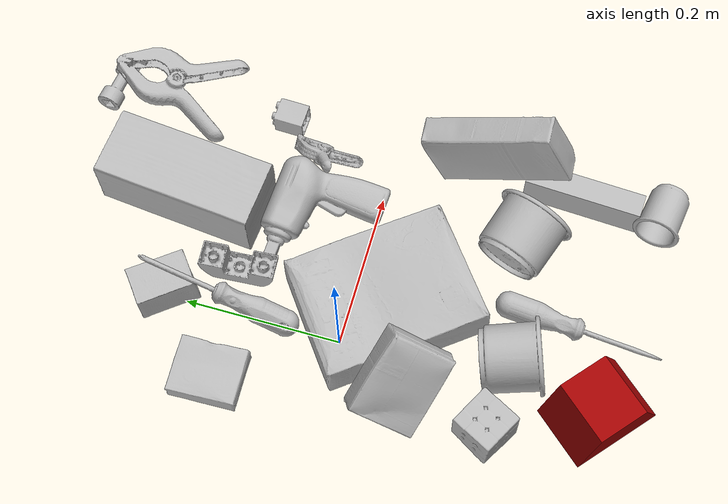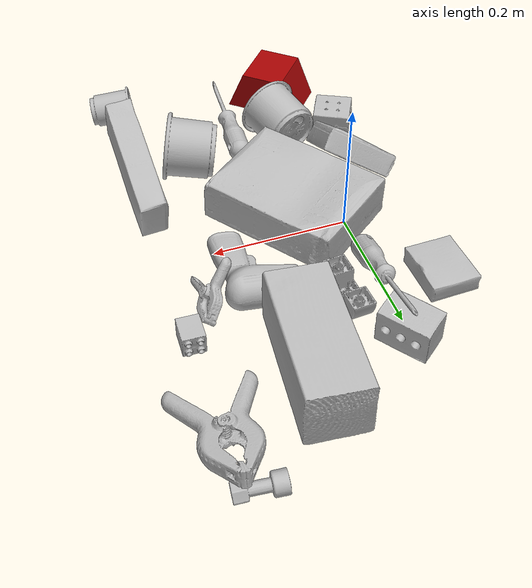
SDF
<sdf version="1.4">
  <world name="default">
    <light name="light1" type="point">
      <pose>0 0 1 0 0 0</pose>
      <diffuse>3 3 3 1</diffuse>
      <specular>3 3 3 1</specular>
    </light>
    <light name="light2" type="point">
      <pose>0 0.5 2 0 0 0</pose>
      <diffuse>1 1 1 1</diffuse>
      <specular>1 1 1 1</specular>
    </light>
    <light name="light3" type="point">
      <pose>0 0.5 2 0 0 0</pose>
      <diffuse>3 3 3 1</diffuse>
      <specular>3 3 3 1</specular>
    </light>
    <scene>
      <ambient>0.7 0.7 0.7</ambient>
    </scene>
    <model name="box21">
      <link name="link_box21">
        <collision name="default">
          <geometry>
            <mesh>
              <uri>model://cracker_box/collision_meshes/collision.obj</uri>
              <scale>1.0 1.0 1.0</scale>
            </mesh>
          </geometry>
          <surface>
            <friction>
              <ode>
                <mu>0.5</mu>
                <mu2>0.5</mu2>
              </ode>
            </friction>
          <contact>
        <ode>
            <max_vel>0</max_vel>
            <min_depth>0.0001</min_depth>
            <kp>1e8</kp>
        </ode>
    </contact></surface>
        </collision>
        <visual name="default">
          <geometry>
            <mesh>
              <uri>model://cracker_box/visual_meshes/visual.dae</uri>
              <scale>1.0 1.0 1.0</scale>
            </mesh>
          </geometry>
        </visual>
        <inertial>
          <mass>3.1344146728515625</mass>
          <pose>0.0009464123286306858 0.00025434247800149024 -0.0017029535956680775 -0.0003162077429326042 -0.011106488668875016 0.0025467950024750923</pose>
          <inertia>
            <ixx>0.0079725515</ixx>
            <iyy>0.01316425</iyy>
            <izz>0.01878659</izz>
            <ixy>0</ixy>
            <ixz>0</ixz>
            <iyz>0</iyz>
          </inertia>
        </inertial>
      </link>
      <pose>0.06319320201873779 -0.042332835495471954 0.03648179769515991 -0.011788218720367474 -0.00736710999934308 -0.9288252763415257</pose>
    </model>
    <model name="box22">
      <link name="link_box22">
        <collision name="default">
          <geometry>
            <mesh>
              <uri>model://jenga/collision_meshes/collision.obj</uri>
              <scale>1.0 1.0 1.0</scale>
            </mesh>
          </geometry>
          <surface>
            <friction>
              <ode>
                <mu>0.5</mu>
                <mu2>0.5</mu2>
              </ode>
            </friction>
          <contact>
        <ode>
            <max_vel>0</max_vel>
            <min_depth>0.0001</min_depth>
            <kp>1e8</kp>
        </ode>
    </contact></surface>
        </collision>
        <visual name="default">
          <geometry>
            <mesh>
              <uri>model://jenga/visual_meshes/visual.dae</uri>
              <scale>1.0 1.0 1.0</scale>
            </mesh>
          </geometry>
        </visual>
        <inertial>
          <mass>0.23869852721691132</mass>
          <pose>-2.502855807051674e-07 -0.0001025000965455547 -4.092339804628864e-05 0.0 -7.34215461761844e-07 0.0</pose>
          <inertia>
            <ixx>6.605367e-05</ixx>
            <iyy>0.00044757788</iyy>
            <izz>0.00047782745</izz>
            <ixy>0</ixy>
            <ixz>0</ixz>
            <iyz>0</iyz>
          </inertia>
        </inertial>
      </link>
      <pose>0.264342337846756 -0.2472194880247116 0.02470097690820694 1.5775759859903118 -3.776436463427624e-05 1.5168237715644182</pose>
    </model>
    <model name="box23">
      <link name="link_box23">
        <collision name="default">
          <geometry>
            <mesh>
              <uri>model://rubiks_cube/collision_meshes/collision.obj</uri>
              <scale>1.0 1.0 1.0</scale>
            </mesh>
          </geometry>
          <surface>
            <friction>
              <ode>
                <mu>0.5</mu>
                <mu2>0.5</mu2>
              </ode>
            </friction>
          <contact>
        <ode>
            <max_vel>0</max_vel>
            <min_depth>0.0001</min_depth>
            <kp>1e8</kp>
        </ode>
    </contact></surface>
        </collision>
        <visual name="default">
          <geometry>
            <mesh>
              <uri>model://rubiks_cube/visual_meshes/visual.dae</uri>
              <scale>1.0 1.0 1.0</scale>
            </mesh>
          </geometry>
        </visual>
        <inertial>
          <mass>0.26229962706565857</mass>
          <pose>2.6721041649580002e-05 5.2569666877388954e-05 -7.264316082000732e-06 -0.05467189873579491 -0.09814109048128683 -0.0344550730209751</pose>
          <inertia>
            <ixx>0.00014493814</ixx>
            <iyy>0.00014426222</iyy>
            <izz>0.00014613918</izz>
            <ixy>0</ixy>
            <ixz>0</ixz>
            <iyz>0</iyz>
          </inertia>
        </inertial>
      </link>
      <pose>-0.06114689260721207 -0.20041228830814362 0.029059726744890213 -3.1341411656104943 0.010891894897546954 1.0426471963329718</pose>
    </model>
    <model name="cup1">
      <link name="link_cup1">
        <collision name="default">
          <geometry>
            <mesh>
              <uri>model://j_cups/collision_meshes/collision.obj</uri>
              <scale>1.0 1.0 1.0</scale>
            </mesh>
          </geometry>
          <surface>
            <friction>
              <ode>
                <mu>0.5</mu>
                <mu2>0.5</mu2>
              </ode>
            </friction>
          <contact>
        <ode>
            <max_vel>0</max_vel>
            <min_depth>0.0001</min_depth>
            <kp>1e8</kp>
        </ode>
    </contact></surface>
        </collision>
        <visual name="default">
          <geometry>
            <mesh>
              <uri>model://j_cups/visual_meshes/visual.dae</uri>
              <scale>1.0 1.0 1.0</scale>
            </mesh>
          </geometry>
        </visual>
        <inertial>
          <mass>0.10388943552970886</mass>
          <pose>0.0006164857186377048 0.0005398984649218619 -0.0013479008339345455 0.03030360356214998 0.03758024855654077 0.43868424196936845</pose>
          <inertia>
            <ixx>0.00015254253</ixx>
            <iyy>0.0001541288</iyy>
            <izz>0.00017584988</izz>
            <ixy>0</ixy>
            <ixz>0</ixz>
            <iyz>0</iyz>
          </inertia>
        </inertial>
      </link>
      <pose>0.18000918626785278 -0.18472668528556824 0.04694898799061775 -1.0431731385618732 1.322097684930251 -1.3960555952602736</pose>
    </model>
    <model name="cup2">
      <link name="link_cup2">
        <collision name="default">
          <geometry>
            <mesh>
              <uri>model://i_cups/collision_meshes/collision.obj</uri>
              <scale>1.0 1.0 1.0</scale>
            </mesh>
          </geometry>
          <surface>
            <friction>
              <ode>
                <mu>0.5</mu>
                <mu2>0.5</mu2>
              </ode>
            </friction>
          <contact>
        <ode>
            <max_vel>0</max_vel>
            <min_depth>0.0001</min_depth>
            <kp>1e8</kp>
        </ode>
    </contact></surface>
        </collision>
        <visual name="default">
          <geometry>
            <mesh>
              <uri>model://i_cups/visual_meshes/visual.dae</uri>
              <scale>1.0 1.0 1.0</scale>
            </mesh>
          </geometry>
        </visual>
        <inertial>
          <mass>0.057485051453113556</mass>
          <pose>0.00011239853483857587 0.00016797262651380152 -0.000857901235576719 -0.028982969026390082 -0.03987335468246028 -0.34591562504163004</pose>
          <inertia>
            <ixx>7.958892e-05</ixx>
            <iyy>8.029015e-05</iyy>
            <izz>8.8953486e-05</izz>
            <ixy>0</ixy>
            <ixz>0</ixz>
            <iyz>0</iyz>
          </inertia>
        </inertial>
      </link>
      <pose>0.02423764020204544 -0.21042922139167786 0.04489922523498535 1.237171521545906 1.1914225678807546 -0.012844559033568586</pose>
    </model>
    <model name="box11">
      <link name="link_box11">
        <collision name="default">
          <geometry>
            <mesh>
              <uri>model://wood_block/collision_meshes/collision.obj</uri>
              <scale>1.0 1.0 1.0</scale>
            </mesh>
          </geometry>
          <surface>
            <friction>
              <ode>
                <mu>0.5</mu>
                <mu2>0.5</mu2>
              </ode>
            </friction>
          <contact>
        <ode>
            <max_vel>0</max_vel>
            <min_depth>0.0001</min_depth>
            <kp>1e8</kp>
        </ode>
    </contact></surface>
        </collision>
        <visual name="default">
          <geometry>
            <mesh>
              <uri>model://wood_block/visual_meshes/visual.dae</uri>
              <scale>1.0 1.0 1.0</scale>
            </mesh>
          </geometry>
        </visual>
        <inertial>
          <mass>2.2218124866485596</mass>
          <pose>-5.813315510749817e-06 -0.000570809468626976 0.0002640858292579651 -0.052211005792275555 -0.005192694700552194 -0.006861375481739596</pose>
          <inertia>
            <ixx>0.0029731211</ixx>
            <iyy>0.009392092</iyy>
            <izz>0.009356961</izz>
            <ixy>0</ixy>
            <ixz>0</ixz>
            <iyz>0</iyz>
          </inertia>
        </inertial>
      </link>
      <pose>0.14066430926322937 0.24186721444129944 0.045700665563344955 1.568130111839033 -0.006938640326150662 1.4757561537456554</pose>
    </model>
    <model name="box12">
      <link name="link_box12">
        <collision name="default">
          <geometry>
            <mesh>
              <uri>model://sugar_box/collision_meshes/collision.obj</uri>
              <scale>1.0 1.0 1.0</scale>
            </mesh>
          </geometry>
          <surface>
            <friction>
              <ode>
                <mu>0.5</mu>
                <mu2>0.5</mu2>
              </ode>
            </friction>
          <contact>
        <ode>
            <max_vel>0</max_vel>
            <min_depth>0.0001</min_depth>
            <kp>1e8</kp>
        </ode>
    </contact></surface>
        </collision>
        <visual name="default">
          <geometry>
            <mesh>
              <uri>model://sugar_box/visual_meshes/visual.dae</uri>
              <scale>1.0 1.0 1.0</scale>
            </mesh>
          </geometry>
        </visual>
        <inertial>
          <mass>1.0162616968154907</mass>
          <pose>0.0010343727190047503 3.849109634757042e-05 -0.00036364805418998003 -0.0004046261550277283 0.0010506634055573133 0.0026153787890220875</pose>
          <inertia>
            <ixx>0.00084674655</ixx>
            <iyy>0.002736858</iyy>
            <izz>0.0032763465</izz>
            <ixy>0</ixy>
            <ixz>0</ixz>
            <iyz>0</iyz>
          </inertia>
        </inertial>
      </link>
      <pose>0.27467280626296997 -0.12866748869419098 0.07896832376718521 1.6299067918788013 0.4365313323702644 1.6208451715511383</pose>
    </model>
    <model name="box13">
      <link name="link_box13">
        <collision name="default">
          <geometry>
            <mesh>
              <uri>model://pudding_box/collision_meshes/collision.obj</uri>
              <scale>1.0 1.0 1.0</scale>
            </mesh>
          </geometry>
          <surface>
            <friction>
              <ode>
                <mu>0.5</mu>
                <mu2>0.5</mu2>
              </ode>
            </friction>
          <contact>
        <ode>
            <max_vel>0</max_vel>
            <min_depth>0.0001</min_depth>
            <kp>1e8</kp>
        </ode>
    </contact></surface>
        </collision>
        <visual name="default">
          <geometry>
            <mesh>
              <uri>model://pudding_box/visual_meshes/visual.dae</uri>
              <scale>1.0 1.0 1.0</scale>
            </mesh>
          </geometry>
        </visual>
        <inertial>
          <mass>0.24922829866409302</mass>
          <pose>0.0004894822486676276 0.0008067885646596551 -0.0005188828217796981 0.005213100397381839 -0.006603797317439846 0.02007982889363753</pose>
          <inertia>
            <ixx>0.00028173975</ixx>
            <iyy>0.00018955652</iyy>
            <izz>0.0004160624</izz>
            <ixy>0</ixy>
            <ixz>0</ixz>
            <iyz>0</iyz>
          </inertia>
        </inertial>
      </link>
      <pose>-0.04478980973362923 -0.08966580033302307 0.05909731984138489 2.5459245489591034 -0.4974974871192715 1.5446489638377587</pose>
    </model>
    <model name="box14">
      <link name="link_box14">
        <collision name="default">
          <geometry>
            <mesh>
              <uri>model://gelatin_box/collision_meshes/collision.obj</uri>
              <scale>1.0 1.0 1.0</scale>
            </mesh>
          </geometry>
          <surface>
            <friction>
              <ode>
                <mu>0.5</mu>
                <mu2>0.5</mu2>
              </ode>
            </friction>
          <contact>
        <ode>
            <max_vel>0</max_vel>
            <min_depth>0.0001</min_depth>
            <kp>1e8</kp>
        </ode>
    </contact></surface>
        </collision>
        <visual name="default">
          <geometry>
            <mesh>
              <uri>model://gelatin_box/visual_meshes/visual.dae</uri>
              <scale>1.0 1.0 1.0</scale>
            </mesh>
          </geometry>
        </visual>
        <inertial>
          <mass>0.21856601536273956</mass>
          <pose>0.0004319618456065655 0.00011156871914863586 -0.00036403213744051754 -0.001050372093012012 -0.00475581868936722 0.016440559471878533</pose>
          <inertia>
            <ixx>0.00015428978</ixx>
            <iyy>0.000110208384</iyy>
            <izz>0.00023486343</izz>
            <ixy>0</ixy>
            <ixz>0</ixz>
            <iyz>0</iyz>
          </inertia>
        </inertial>
      </link>
      <pose>-0.08476661890745163 0.1420733481645584 0.015168312005698681 0.005597500435468938 -0.007304579789904046 0.018533715544867924</pose>
    </model>
    <model name="cup15">
      <link name="link_cup15">
        <collision name="default">
          <geometry>
            <mesh>
              <uri>model://b_cups/collision_meshes/collision.obj</uri>
              <scale>1.0 1.0 1.0</scale>
            </mesh>
          </geometry>
          <surface>
            <friction>
              <ode>
                <mu>0.5</mu>
                <mu2>0.5</mu2>
              </ode>
            </friction>
          <contact>
        <ode>
            <max_vel>0</max_vel>
            <min_depth>0.0001</min_depth>
            <kp>1e8</kp>
        </ode>
    </contact></surface>
        </collision>
        <visual name="default">
          <geometry>
            <mesh>
              <uri>model://b_cups/visual_meshes/visual.dae</uri>
              <scale>1.0 1.0 1.0</scale>
            </mesh>
          </geometry>
        </visual>
        <inertial>
          <mass>0.04691024869680405</mass>
          <pose>0.0005182002787478268 0.0018058588029816747 -0.0013381802709773183 0.1135631498080702 0.03872518969029637 -0.3456955043116969</pose>
          <inertia>
            <ixx>3.0706047e-05</ixx>
            <iyy>3.012308e-05</iyy>
            <izz>2.5838557e-05</izz>
            <ixy>0</ixy>
            <ixz>0</ixz>
            <iyz>0</iyz>
          </inertia>
        </inertial>
      </link>
      <pose>0.2673167288303375 -0.350726842880249 0.027937889099121094 -1.465999108985365 -0.48111140787601087 1.3549081408471875</pose>
    </model>
    <model name="toy1">
      <link name="link_toy1">
        <collision name="default">
          <geometry>
            <mesh>
              <uri>model://e_lego_duplo/collision_meshes/collision.obj</uri>
              <scale>1.0 1.0 1.0</scale>
            </mesh>
          </geometry>
          <surface>
            <friction>
              <ode>
                <mu>0.5</mu>
                <mu2>0.5</mu2>
              </ode>
            </friction>
          <contact>
        <ode>
            <max_vel>0</max_vel>
            <min_depth>0.0001</min_depth>
            <kp>1e8</kp>
        </ode>
    </contact></surface>
        </collision>
        <visual name="default">
          <geometry>
            <mesh>
              <uri>model://e_lego_duplo/visual_meshes/visual.dae</uri>
              <scale>1.0 1.0 1.0</scale>
            </mesh>
          </geometry>
        </visual>
        <inertial>
          <mass>0.06732096523046494</mass>
          <pose>0.000325604691170156 0.00023485434940084815 0.001952146296389401 -0.02256754688519212 -6.825533823954374e-05 -0.007625149208872714</pose>
          <inertia>
            <ixx>1.40386455e-05</ixx>
            <iyy>5.761822e-05</iyy>
            <izz>5.6108554e-05</izz>
            <ixy>0</ixy>
            <ixz>0</ixz>
            <iyz>0</iyz>
          </inertia>
        </inertial>
      </link>
      <pose>0.05666877329349518 0.14723922312259674 0.021755388006567955 -3.1248442304488293 -0.002280753056426408 1.6275578300860603</pose>
    </model>
    <model name="toy2">
      <link name="link_toy2">
        <collision name="default">
          <geometry>
            <mesh>
              <uri>model://c_toy_airplane/collision_meshes/collision.obj</uri>
              <scale>1.0 1.0 1.0</scale>
            </mesh>
          </geometry>
          <surface>
            <friction>
              <ode>
                <mu>0.5</mu>
                <mu2>0.5</mu2>
              </ode>
            </friction>
          <contact>
        <ode>
            <max_vel>0</max_vel>
            <min_depth>0.0001</min_depth>
            <kp>1e8</kp>
        </ode>
    </contact></surface>
        </collision>
        <visual name="default">
          <geometry>
            <mesh>
              <uri>model://c_toy_airplane/visual_meshes/visual.dae</uri>
              <scale>1.0 1.0 1.0</scale>
            </mesh>
          </geometry>
        </visual>
        <inertial>
          <mass>0.036399733275175095</mass>
          <pose>-0.00023024277470540255 -4.4302899482318026e-07 -0.0060805329121649265 -0.006192184726307751 -0.016797944030005924 0.7654593329003626</pose>
          <inertia>
            <ixx>1.6714015e-05</ixx>
            <iyy>1.6666843e-05</iyy>
            <izz>3.9241195e-06</izz>
            <ixy>0</ixy>
            <ixz>0</ixz>
            <iyz>0</iyz>
          </inertia>
        </inertial>
      </link>
      <pose>0.26190659403800964 0.3812901973724365 0.014698592945933342 1.617333285863722 -0.31370930596532337 1.4411984734772252</pose>
    </model>
    <model name="toy3">
      <link name="link_toy3">
        <collision name="default">
          <geometry>
            <mesh>
              <uri>model://foam_brick/collision_meshes/collision.obj</uri>
              <scale>1.0 1.0 1.0</scale>
            </mesh>
          </geometry>
          <surface>
            <friction>
              <ode>
                <mu>0.5</mu>
                <mu2>0.5</mu2>
              </ode>
            </friction>
          <contact>
        <ode>
            <max_vel>0</max_vel>
            <min_depth>0.0001</min_depth>
            <kp>1e8</kp>
        </ode>
    </contact></surface>
        </collision>
        <visual name="default">
          <geometry>
            <mesh>
              <uri>model://foam_brick/visual_meshes/visual.dae</uri>
              <scale>1.0 1.0 1.0</scale>
            </mesh>
          </geometry>
        </visual>
        <inertial>
          <mass>0.28719362616539</mass>
          <pose>-0.0002522472059354186 0.00034584346576593816 -0.0002532101352699101 -0.2940183114741006 0.017274439707053432 -0.0007449906726392561</pose>
          <inertia>
            <ixx>0.00012545152</ixx>
            <iyy>0.00020028985</iyy>
            <izz>0.00020283528</izz>
            <ixy>0</ixy>
            <ixz>0</ixz>
            <iyz>0</iyz>
          </inertia>
        </inertial>
      </link>
      <pose>0.006841158028692007 0.2306089848279953 0.026264874264597893 -1.5819278489033526 -0.012722518040428432 -0.9300439526059022</pose>
    </model>
    <model name="toy4">
      <link name="link_toy4">
        <collision name="default">
          <geometry>
            <mesh>
              <uri>model://prism/collision_meshes/collision.obj</uri>
              <scale>1.0 1.0 1.0</scale>
            </mesh>
          </geometry>
          <surface>
            <friction>
              <ode>
                <mu>0.5</mu>
                <mu2>0.5</mu2>
              </ode>
            </friction>
          <contact>
        <ode>
            <max_vel>0</max_vel>
            <min_depth>0.0001</min_depth>
            <kp>1e8</kp>
        </ode>
    </contact></surface>
        </collision>
        <visual name="default">
          <geometry>
            <mesh>
              <uri>model://prism/visual_meshes/visual.dae</uri>
              <scale>1.0 1.0 1.0</scale>
            </mesh>
          </geometry>
        </visual>
        <inertial>
          <mass>0.7170383930206299</mass>
          <pose>-9.85359656624496e-05 -4.96157269935793e-07 -0.0033869098406285048 0.0 0.006559181231804993 0.0</pose>
          <inertia>
            <ixx>0.0006471183</ixx>
            <iyy>0.0007820508</iyy>
            <izz>0.0009579188</izz>
            <ixy>0</ixy>
            <ixz>0</ixz>
            <iyz>0</iyz>
          </inertia>
        </inertial>
      </link>
      <pose>-0.001218329998664558 -0.3276161551475525 0.03217000514268875 -2.58820212394076e-08 8.711443023989156e-09 2.4254767548381335</pose>
    </model>
    <model name="toy5">
      <link name="link_toy5">
        <collision name="default">
          <geometry>
            <mesh>
              <uri>model://b_toy_airplane/collision_meshes/collision.obj</uri>
              <scale>1.0 1.0 1.0</scale>
            </mesh>
          </geometry>
          <surface>
            <friction>
              <ode>
                <mu>0.5</mu>
                <mu2>0.5</mu2>
              </ode>
            </friction>
          <contact>
        <ode>
            <max_vel>0</max_vel>
            <min_depth>0.0001</min_depth>
            <kp>1e8</kp>
        </ode>
    </contact></surface>
        </collision>
        <visual name="default">
          <geometry>
            <mesh>
              <uri>model://b_toy_airplane/visual_meshes/visual.dae</uri>
              <scale>1.0 1.0 1.0</scale>
            </mesh>
          </geometry>
        </visual>
        <inertial>
          <mass>0.399619996547699</mass>
          <pose>0.005081363022327423 0.004015584941953421 0.009543066844344139 -0.04001809649421662 -0.04022184162979335 -0.5601502893443677</pose>
          <inertia>
            <ixx>0.0007419019</ixx>
            <iyy>0.00029654545</iyy>
            <izz>0.0009229998</izz>
            <ixy>0</ixy>
            <ixz>0</ixz>
            <iyz>0</iyz>
          </inertia>
        </inertial>
      </link>
      <pose>0.17024856805801392 0.07971587032079697 0.035689085721969604 3.069570965938138 0.07405945250881835 3.0666797104081875</pose>
    </model>
    <model name="toy6">
      <link name="link_toy6">
        <collision name="default">
          <geometry>
            <mesh>
              <uri>model://f_lego_duplo/collision_meshes/collision.obj</uri>
              <scale>1.0 1.0 1.0</scale>
            </mesh>
          </geometry>
          <surface>
            <friction>
              <ode>
                <mu>0.5</mu>
                <mu2>0.5</mu2>
              </ode>
            </friction>
          <contact>
        <ode>
            <max_vel>0</max_vel>
            <min_depth>0.0001</min_depth>
            <kp>1e8</kp>
        </ode>
    </contact></surface>
        </collision>
        <visual name="default">
          <geometry>
            <mesh>
              <uri>model://f_lego_duplo/visual_meshes/visual.dae</uri>
              <scale>1.0 1.0 1.0</scale>
            </mesh>
          </geometry>
        </visual>
        <inertial>
          <mass>0.05315950885415077</mass>
          <pose>2.3694145056651905e-05 0.0001339314185315743 0.0018837872194126248 0.029838727868319145 -0.014424898970195728 -0.6756716124708322</pose>
          <inertia>
            <ixx>1.1232896e-05</ixx>
            <iyy>1.1332969e-05</iyy>
            <izz>9.750634e-06</izz>
            <ixy>0</ixy>
            <ixz>0</ixz>
            <iyz>0</iyz>
          </inertia>
        </inertial>
      </link>
      <pose>0.27476754784584045 0.1474388688802719 0.01620779186487198 1.5790918660169078 -3.2759789507816676e-05 3.1064924913698717</pose>
    </model>
    <model name="hardware1">
      <link name="link_hardware1">
        <collision name="default">
          <geometry>
            <mesh>
              <uri>model://flat_screwdriver/collision_meshes/collision.obj</uri>
              <scale>1.0 1.0 1.0</scale>
            </mesh>
          </geometry>
          <surface>
            <friction>
              <ode>
                <mu>0.5</mu>
                <mu2>0.5</mu2>
              </ode>
            </friction>
          <contact>
        <ode>
            <max_vel>0</max_vel>
            <min_depth>0.0001</min_depth>
            <kp>1e8</kp>
        </ode>
    </contact></surface>
        </collision>
        <visual name="default">
          <geometry>
            <mesh>
              <uri>model://flat_screwdriver/visual_meshes/visual.dae</uri>
              <scale>1.0 1.0 1.0</scale>
            </mesh>
          </geometry>
        </visual>
        <inertial>
          <mass>0.12191366404294968</mass>
          <pose>-0.0489187091588974 -0.0006576801533810794 -0.0006140916957519948 -0.5614853566550635 -0.0032337267722331534 0.006982277608032515</pose>
          <inertia>
            <ixx>1.4404012e-05</ixx>
            <iyy>0.00018286215</iyy>
            <izz>0.00018277747</izz>
            <ixy>0</ixy>
            <ixz>0</ixz>
            <iyz>0</iyz>
          </inertia>
        </inertial>
      </link>
      <pose>0.09213438630104065 -0.28038927912712097 0.014704041182994843 -1.4051199282267162 0.03196517306479872 -1.6580376838051925</pose>
    </model>
    <model name="hardware2">
      <link name="link_hardware2">
        <collision name="default">
          <geometry>
            <mesh>
              <uri>model://medium_clamp/collision_meshes/collision.obj</uri>
              <scale>1.0 1.0 1.0</scale>
            </mesh>
          </geometry>
          <surface>
            <friction>
              <ode>
                <mu>0.5</mu>
                <mu2>0.5</mu2>
              </ode>
            </friction>
          <contact>
        <ode>
            <max_vel>0</max_vel>
            <min_depth>0.0001</min_depth>
            <kp>1e8</kp>
        </ode>
    </contact></surface>
        </collision>
        <visual name="default">
          <geometry>
            <mesh>
              <uri>model://medium_clamp/visual_meshes/visual.dae</uri>
              <scale>1.0 1.0 1.0</scale>
            </mesh>
          </geometry>
        </visual>
        <inertial>
          <mass>0.018204163759946823</mass>
          <pose>0.005390994716435671 0.00039532413939014077 -0.0001222158025484532 -0.0012269240735234023 0.0025845026557488396 0.03820772126630794</pose>
          <inertia>
            <ixx>4.959469e-06</ixx>
            <iyy>7.217431e-06</iyy>
            <izz>1.1117007e-05</izz>
            <ixy>0</ixy>
            <ixz>0</ixz>
            <iyz>0</iyz>
          </inertia>
        </inertial>
      </link>
      <pose>0.2324712574481964 0.08919854462146759 0.02240370772778988 0.8365586950207858 0.2618915747968057 1.2268883419808736</pose>
    </model>
    <model name="hardware3">
      <link name="link_hardware3">
        <collision name="default">
          <geometry>
            <mesh>
              <uri>model://large_clamp/collision_meshes/collision.obj</uri>
              <scale>1.0 1.0 1.0</scale>
            </mesh>
          </geometry>
          <surface>
            <friction>
              <ode>
                <mu>0.5</mu>
                <mu2>0.5</mu2>
              </ode>
            </friction>
          <contact>
        <ode>
            <max_vel>0</max_vel>
            <min_depth>0.0001</min_depth>
            <kp>1e8</kp>
        </ode>
    </contact></surface>
        </collision>
        <visual name="default">
          <geometry>
            <mesh>
              <uri>model://large_clamp/visual_meshes/visual.dae</uri>
              <scale>1.0 1.0 1.0</scale>
            </mesh>
          </geometry>
        </visual>
        <inertial>
          <mass>0.18972517549991608</mass>
          <pose>0.006369356997311115 0.0003585676895454526 -0.00018398048996459693 -0.002133071569430183 0.00967158655684735 0.02663316926682878</pose>
          <inertia>
            <ixx>0.0001673895</ixx>
            <iyy>0.00031788155</iyy>
            <izz>0.00045985627</izz>
            <ixy>0</ixy>
            <ixz>0</ixz>
            <iyz>0</iyz>
          </inertia>
        </inertial>
      </link>
      <pose>0.27778637409210205 0.30458366870880127 0.027369001880288124 0.010744480119956911 -0.20943511299271858 1.537772051888305</pose>
    </model>
    <model name="hardware4">
      <link name="link_hardware4">
        <collision name="default">
          <geometry>
            <mesh>
              <uri>model://phillips_screwdriver/collision_meshes/collision.obj</uri>
              <scale>1.0 1.0 1.0</scale>
            </mesh>
          </geometry>
          <surface>
            <friction>
              <ode>
                <mu>0.5</mu>
                <mu2>0.5</mu2>
              </ode>
            </friction>
          <contact>
        <ode>
            <max_vel>0</max_vel>
            <min_depth>0.0001</min_depth>
            <kp>1e8</kp>
        </ode>
    </contact></surface>
        </collision>
        <visual name="default">
          <geometry>
            <mesh>
              <uri>model://phillips_screwdriver/visual_meshes/visual.dae</uri>
              <scale>1.0 1.0 1.0</scale>
            </mesh>
          </geometry>
        </visual>
        <inertial>
          <mass>0.10424148291349411</mass>
          <pose>-0.047771818935871124 0.0010362300090491772 -0.000455554953077808 -0.15717568897110376 0.005850990280187748 -0.0021567475529960492</pose>
          <inertia>
            <ixx>1.2247306e-05</ixx>
            <iyy>0.00015355984</iyy>
            <izz>0.00015369034</izz>
            <ixy>0</ixy>
            <ixz>0</ixz>
            <iyz>0</iyz>
          </inertia>
        </inertial>
      </link>
      <pose>0.007152186706662178 0.1531539410352707 0.04516761749982834 -2.2600827680922464 -0.3152729033845664 1.4923207224992079</pose>
    </model>
  <physics type="ode">
      <max_contacts>50</max_contacts>
      <ode>
        <solver>
          <type>quick</type>
          <iters>75</iters>
        </solver>
        <constraints>
          <contact_max_correcting_vel>0</contact_max_correcting_vel>
          <contact_surface_layer>0</contact_surface_layer>
        </constraints>
      </ode>
    </physics></world>
</sdf>
